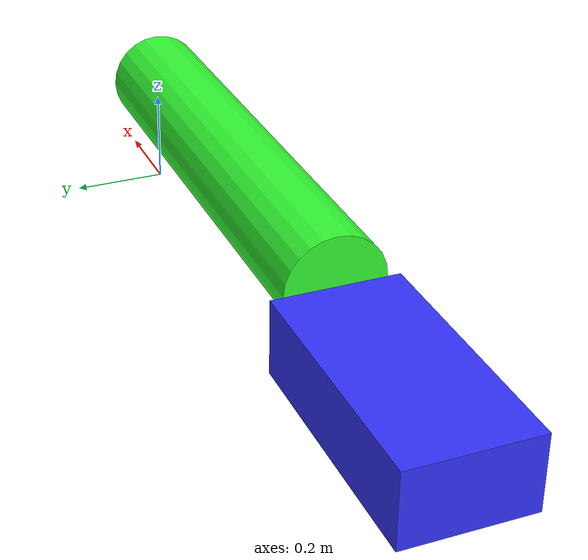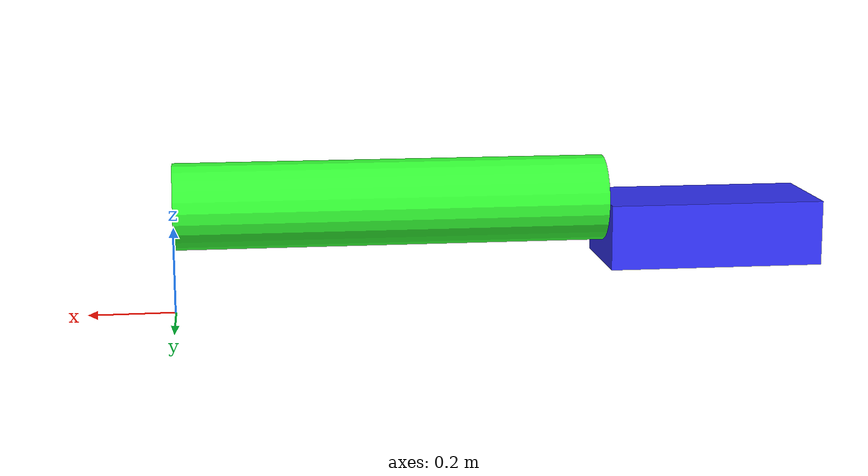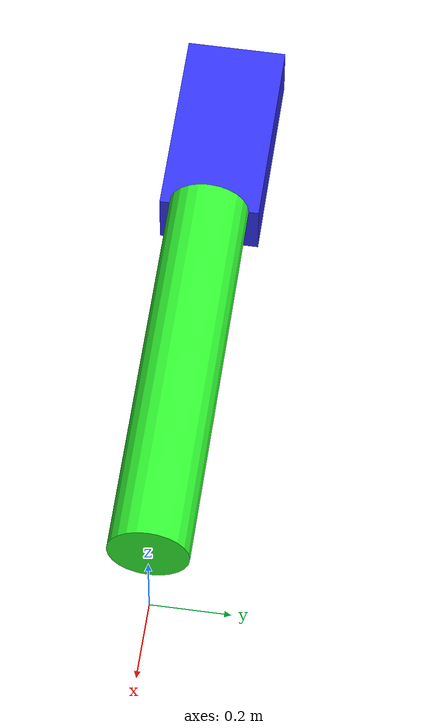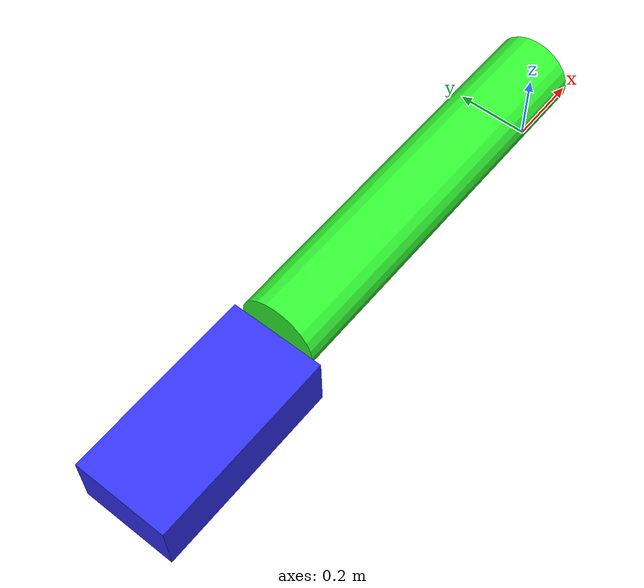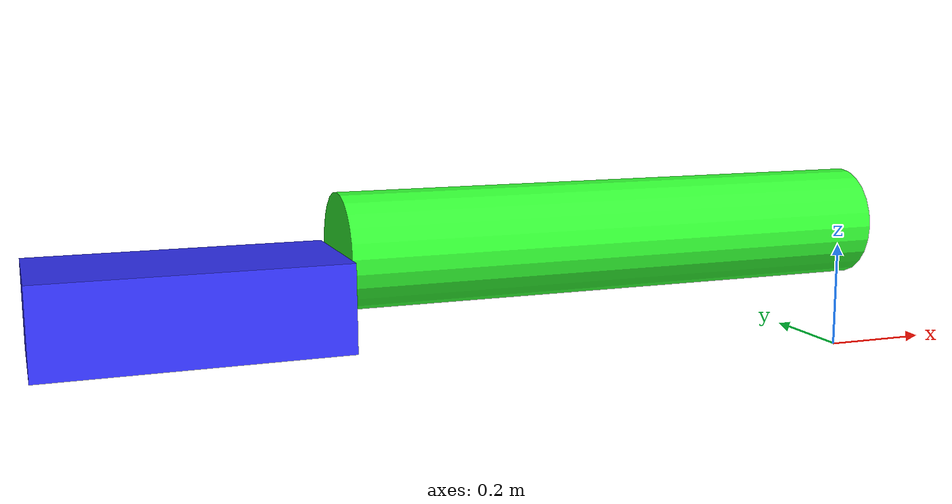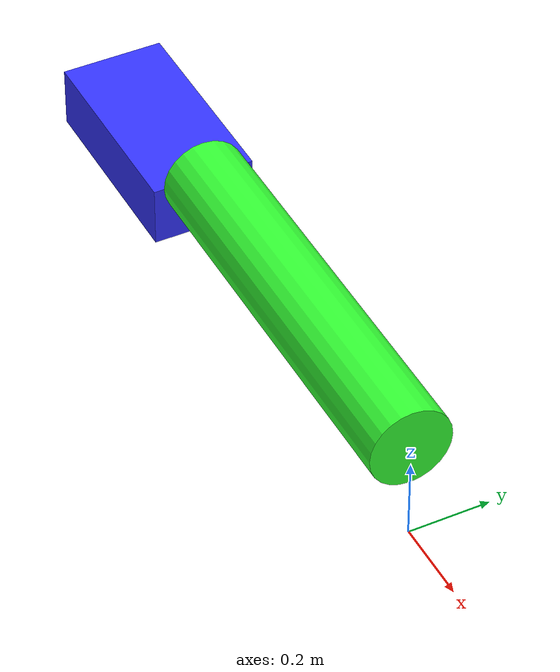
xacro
<?xml version="1.0"?>
<robot xmlns:xacro="http://www.ros.org/wiki/xacro"  name="demo_robot">

    <!-- Macros to make it easier to draw boxes and cylinders -->
    <xacro:macro name="inertial_box" params="mass x y z *origin">
        <inertial>
            <xacro:insert_block name="origin"/>
            <mass value="${mass}" />
            <inertia ixx="${(1/12) * mass * (y*y+z*z)}" ixy="0.0" ixz="0.0"
                     iyy="${(1/12) * mass * (x*x+z*z)}" iyz="0.0"
                     izz="${(1/12) * mass * (x*x+y*y)}" />
        </inertial>
    </xacro:macro>
    <xacro:macro name="inertial_cylinder" params="mass length radius *origin">
        <inertial>
            <xacro:insert_block name="origin"/>
            <mass value="${mass}" />
            <inertia ixx="${(1/12) * mass * (3*radius*radius + length*length)}" ixy="0.0" ixz="0.0"
                     iyy="${(1/12) * mass * (3*radius*radius + length*length)}" iyz="0.0"
                     izz="${(1/2) * mass * (radius*radius)}" />
        </inertial>
    </xacro:macro>

    <!-- Materials -->
    <material name="green">
        <color rgba="0.2 1 0.2 1"/>
    </material>
    <material name="blue">
        <color rgba="0.2 0.2 1 1"/>
    </material>

    <link name="world"></link>

    <!-- A slider -->
    <joint name="slider_joint" type="prismatic">
        <origin xyz="-1.25 0 0.1" rpy="0 0 0"/>
        <parent link="world"/>
        <child link="slider_link"/>
        <axis xyz="1 0 0"/>
        <limit lower="0" upper="2" velocity="100" effort="100"/>
    </joint>

    <link name="slider_link">
        <visual>
            <origin xyz="0 0 0.075" rpy="0 0 0"/>
            <geometry>
                <box size="0.5 0.25 0.15" />
            </geometry>
            <material name="blue" />
        </visual>
        <collision>
            <origin xyz="0 0 0.075" rpy="0 0 0"/>
            <geometry>
                <box size="0.5 0.25 0.15" />
            </geometry>
        </collision>
        <xacro:inertial_box mass="0.5" x="0.5" y="0.25" z="0.15">
            <origin xyz="0 0 0.075" rpy="0 0 0"/>
        </xacro:inertial_box>
    </link>

    <!-- An arm connectrd to the slider -->
    <joint name="arm_joint" type="revolute">
        <origin xyz="0.25 0 0.15" rpy="0 0 0"/>
        <parent link="slider_link"/>
        <child link="arm_link"/>
        <axis xyz="0 -1 0"/>
        <limit lower="0" upper="${pi/2}" velocity="100" effort="100"/>
        <dynamics damping="10.0" friction="10.0"/>
    </joint>

    <xacro:property name="arm_length" value="1" />
    <xacro:property name="arm_radius" value="0.1" />
    <link name="arm_link">
        <visual>
            <origin xyz="${arm_length/2} 0 0" rpy="0 ${pi/2} 0"/>
            <geometry>
                <cylinder length="${arm_length}" radius="${arm_radius}" />
            </geometry>
            <material name="green" />
        </visual>
        <collision>
            <origin xyz="${arm_length/2} 0 0" rpy="0 ${pi/2} 0"/>
            <geometry>
                <cylinder length="${arm_length}" radius="${arm_radius}" />
            </geometry>
        </collision>
        <xacro:inertial_cylinder mass="1.0" length="${arm_length}" radius="${arm_radius}">
            <origin xyz="${arm_length/2} 0 0" rpy="0 ${pi/2} 0"/>
        </xacro:inertial_cylinder>
    </link>

    <!-- Gazebo specific mappings and definitions -->
    <gazebo reference="slider_link">
        <material>Gazebo/Green</material>
    </gazebo>
    <gazebo reference="arm_link">
        <material>Gazebo/Blue</material>
    </gazebo>

    <gazebo>
        <plugin name="gazebo_ros_joint_state_publisher" filename="libgazebo_ros_joint_state_publisher.so">
            <update_rate>20</update_rate>
            <joint_name>slider_joint</joint_name>
            <joint_name>arm_joint</joint_name>
        </plugin>
    </gazebo>

</robot>
